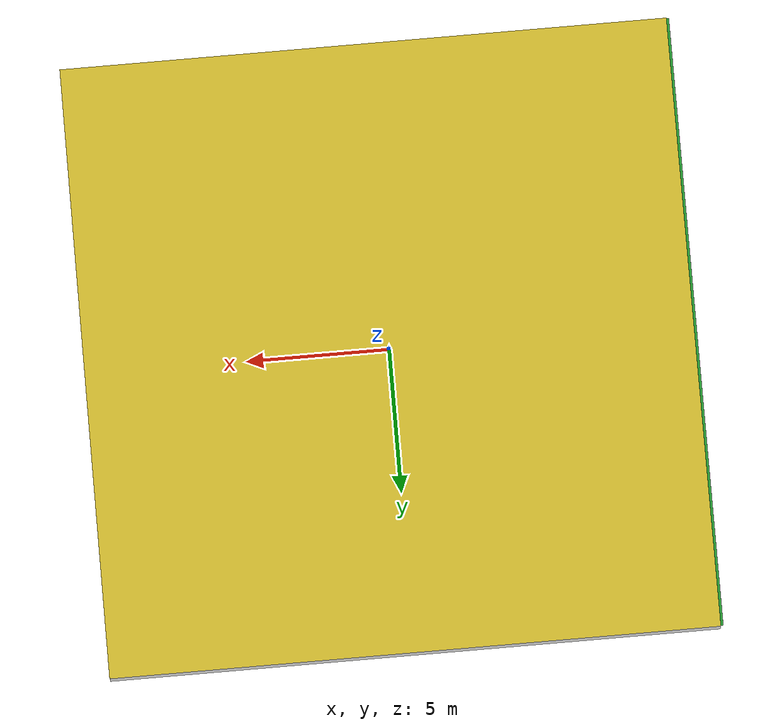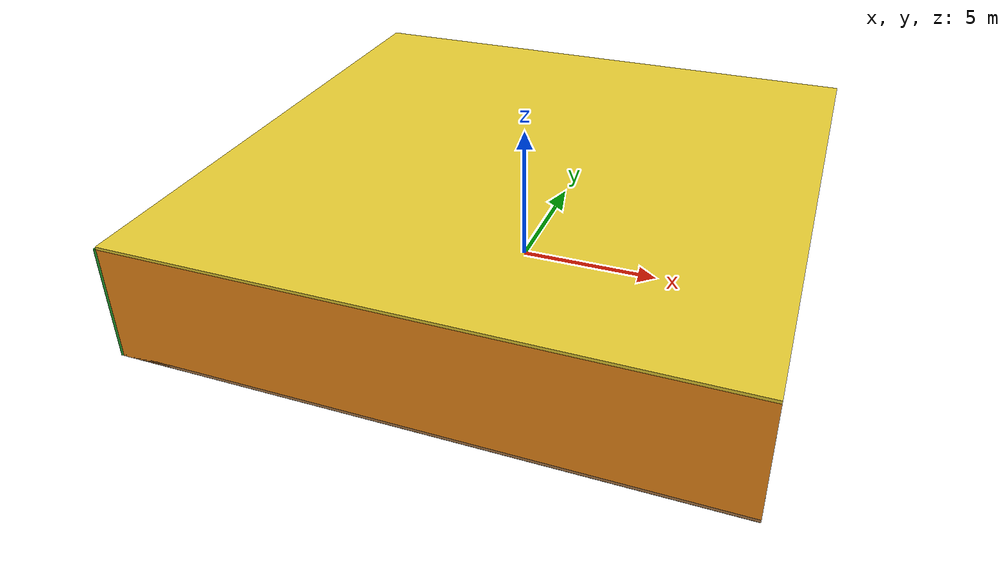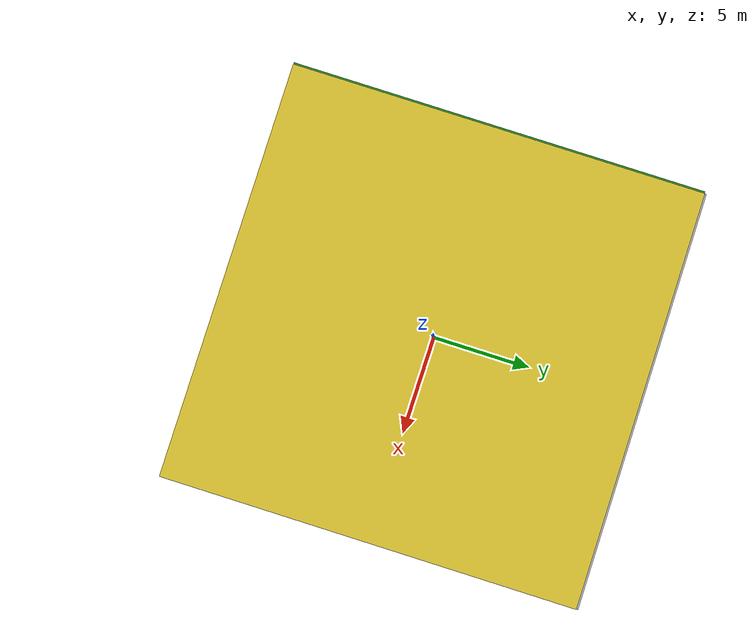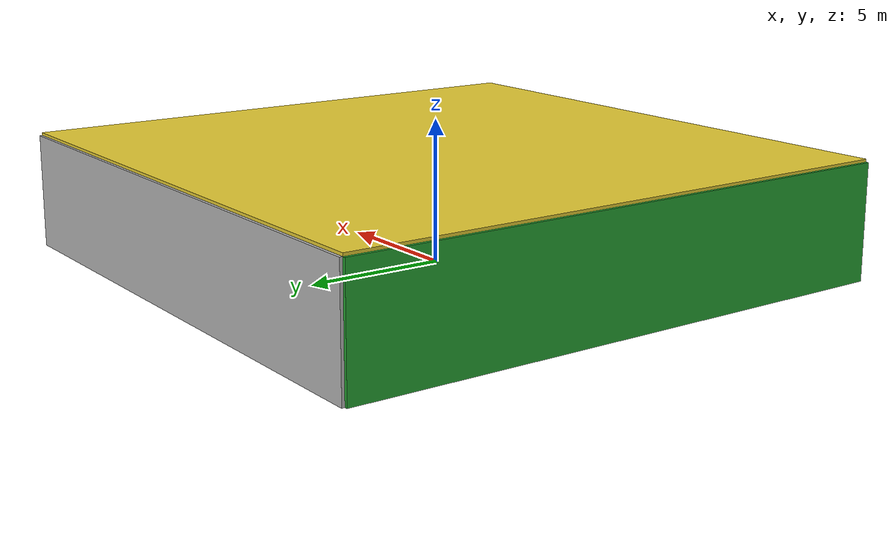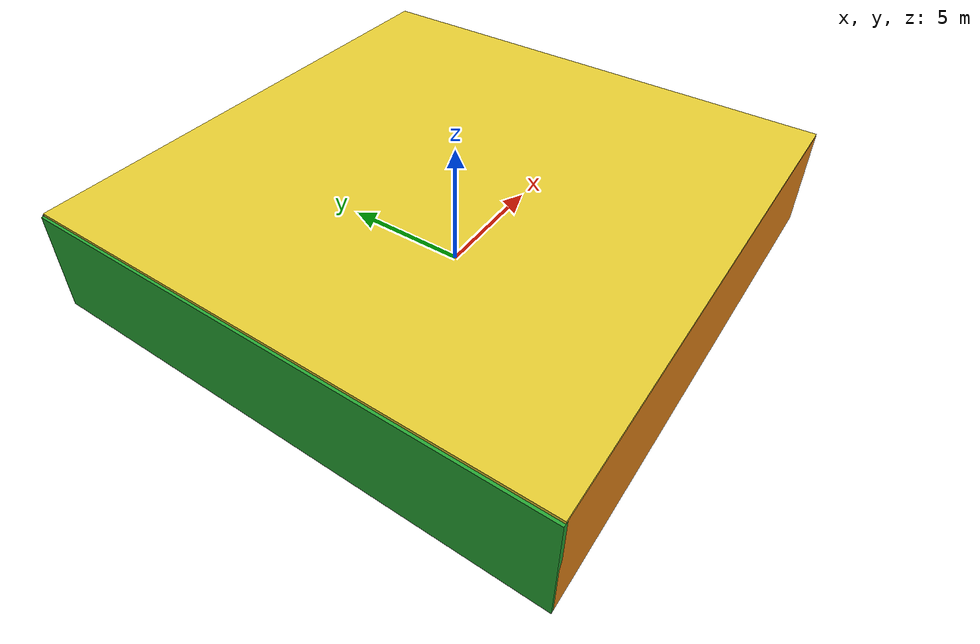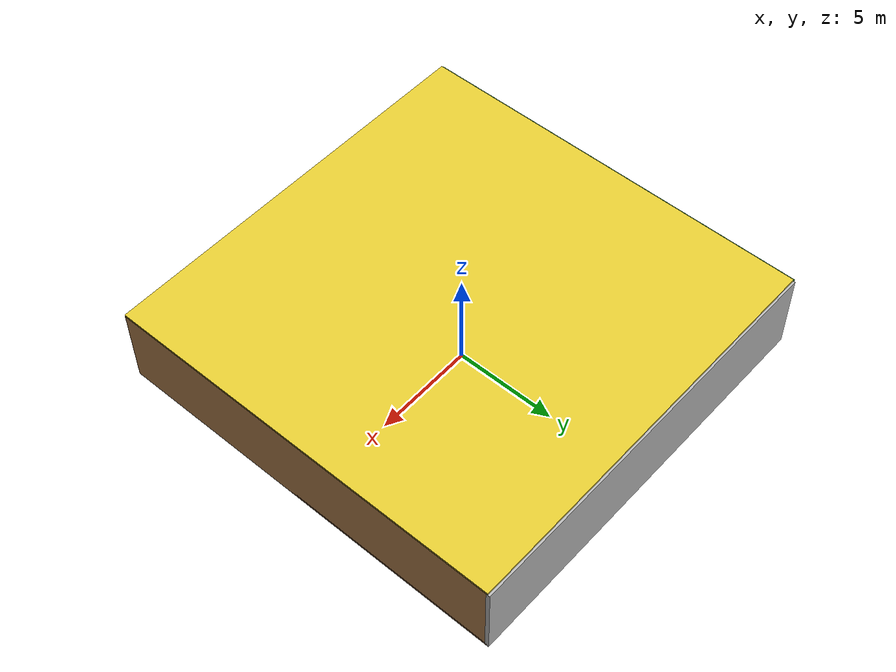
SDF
<sdf version="1.4">
 <world name="default">
  <physics type="ode">
   <max_step_size>0.001</max_step_size>
   <real_time_factor>1</real_time_factor>
   <real_time_update_rate>1000</real_time_update_rate>
   <gravity>0 0 -9.8</gravity>
  </physics>
  <scene><ambient>0.4 0.4 0.4 1</ambient><background>0.7 0.7 0.7 1</background><shadows>1</shadows></scene>
  <model name="Surrounding">
   <static>1</static>
   <link name="Ceiling">
    <collision name="Ceiling_Collision"><geometry><box><size>20 20 0.1</size></box></geometry></collision>
    <visual name="Ceiling_Visual">
     <geometry><box><size>20 20 0.1</size></box></geometry>
     <material>
      <script><uri>file://media/materials/scripts/gazebo.material</uri><name>Gazebo/ZincYellow</name></script>
     </material>
    </visual>
    <pose>0 0 4.05 0 0 0</pose>
   </link>
   <link name="Wall_South">
    <collision name="Wall_South_Collision">
     <geometry><box><size>20 0 4</size></box></geometry>
     <pose>0 0 2 0 -0 0</pose>
    </collision>
    <visual name="Wall_South_Visual">
     <pose>0 0 2 0 -0 0</pose>
     <geometry><box><size>20 0 4</size></box></geometry>
     <material>
      <script><uri>file://media/materials/scripts/gazebo.material</uri><name>Gazebo/Orange</name></script>
     </material>
    </visual>
    <velocity_decay><linear>0</linear><angular>0</angular></velocity_decay>
    <pose>0 -10 0 0 -0 0</pose>
   </link>
   <link name="Wall_East">
    <collision name="Wall_21_Collision">
     <geometry><box><size>20 0 4</size></box></geometry>
     <pose>0 0 2 0 -0 0</pose>
    </collision>
    <visual name="Wall_21_Visual">
     <pose>0 0 2 0 -0 0</pose>
     <geometry><box><size>20 0 4</size></box></geometry>
     <material>
      <script><uri>file://media/materials/scripts/gazebo.material</uri><name>Gazebo/WoodPallet</name></script>
     </material>
    </visual>
    <velocity_decay><linear>0</linear><angular>0</angular></velocity_decay>
    <pose>10 0 0 0 -0 1.5708</pose>
   </link>
   <link name="Wall_North">
    <collision name="Wall_22_Collision">
     <geometry><box><size>20 0.2 4</size></box></geometry>
     <pose>0 0 2 0 -0 0</pose>
    </collision>
    <visual name="Wall_22_Visual">
     <pose>0 0 2 0 -0 0</pose>
     <geometry><box><size>20 0.2 4</size></box></geometry>
     <material>
      <script><uri>file://media/materials/scripts/gazebo.material</uri><name>Gazebo/Pioneer2Body</name></script>
     </material>
    </visual>
    <velocity_decay><linear>0</linear><angular>0</angular></velocity_decay>
    <pose>0 10 0 0 -0 0</pose>
   </link>
   <link name="Wall_West">
    <collision name="Wall_23_Collision">
     <geometry><box><size>20 0.2 4</size></box></geometry>
     <pose>0 0 2 0 -0 0</pose>
    </collision>
    <visual name="Wall_23_Visual">
     <pose>0 0 2 0 -0 0</pose>
     <geometry><box><size>20 0.2 4</size></box></geometry>
     <material>
      <script><uri>file://media/materials/scripts/gazebo.material</uri><name>Gazebo/GreenGlow</name></script>
     </material>
    </visual>
    <velocity_decay><linear>0</linear><angular>0</angular></velocity_decay>
    <pose>-10 0 0 0 0 -1.5708</pose>
   </link>
   <link name="Ground_link">
    <collision name="collision">
     <pose>0 0 .05 0 -0 0</pose>
     <geometry><box><size>20 20 0.1</size></box></geometry>
    </collision>
    <visual name="visual">
     <pose>0 0 .05 0 -0 0</pose>
     <geometry><box><size>20 20 0.1</size></box></geometry>
     <material>
      <script><uri>file://media/materials/scripts/gazebo.material</uri><name>Gazebo/Wood</name></script>
     </material>
    </visual>
   </link>
   <static>1</static>
  </model>
  <spherical_coordinates>
   <surface_model>EARTH_WGS84</surface_model>
   <latitude_deg>0</latitude_deg>
   <longitude_deg>0</longitude_deg>
   <elevation>0</elevation>
   <heading_deg>0</heading_deg>
  </spherical_coordinates>
  <light name="lightball_0" type="diffuse">
   <diffuse>0.8 0.8 0.8 1</diffuse>
   <specular>0.2 0.2 0.2 1</specular>
   <attenuation>
    <range>100</range>
    <constant>0.7</constant>
    <linear>0.01</linear>
    <quadratic>0.001</quadratic>
   </attenuation>
   <direction>-0.5 0.1 -0.9</direction>
   <pose>-5.4853693759 -2.44600669655 1.25532733633 0 0 0</pose>
  </light>
  <light name="lightball_1" type="diffuse">
   <diffuse>0.8 0.8 0.8 1</diffuse>
   <specular>0.2 0.2 0.2 1</specular>
   <attenuation>
    <range>100</range>
    <constant>0.7</constant>
    <linear>0.01</linear>
    <quadratic>0.001</quadratic>
   </attenuation>
   <direction>-0.5 0.1 -0.9</direction>
   <pose>1.05872415017 1.04516365054 0.861253072811 0 0 0</pose>
  </light>
  <light name="lightball_2" type="diffuse">
   <diffuse>0.8 0.8 0.8 1</diffuse>
   <specular>0.2 0.2 0.2 1</specular>
   <attenuation>
    <range>100</range>
    <constant>0.7</constant>
    <linear>0.01</linear>
    <quadratic>0.001</quadratic>
   </attenuation>
   <direction>-0.5 0.1 -0.9</direction>
   <pose>-4.91390622614 -8.59862210457 1.86897297489 0 0 0</pose>
  </light>
  <light name="lightball_3" type="diffuse">
   <diffuse>0.8 0.8 0.8 1</diffuse>
   <specular>0.2 0.2 0.2 1</specular>
   <attenuation>
    <range>100</range>
    <constant>0.7</constant>
    <linear>0.01</linear>
    <quadratic>0.001</quadratic>
   </attenuation>
   <direction>-0.5 0.1 -0.9</direction>
   <pose>-6.4556587731 -2.02744845907 2.49440071284 0 0 0</pose>
  </light>
  <light name="lightball_4" type="diffuse">
   <diffuse>0.8 0.8 0.8 1</diffuse>
   <specular>0.2 0.2 0.2 1</specular>
   <attenuation>
    <range>100</range>
    <constant>0.7</constant>
    <linear>0.01</linear>
    <quadratic>0.001</quadratic>
   </attenuation>
   <direction>-0.5 0.1 -0.9</direction>
   <pose>5.36836452575 -9.94602381541 1.33924877794 0 0 0</pose>
  </light>
  <light name="lightball_5" type="diffuse">
   <diffuse>0.8 0.8 0.8 1</diffuse>
   <specular>0.2 0.2 0.2 1</specular>
   <attenuation>
    <range>100</range>
    <constant>0.7</constant>
    <linear>0.01</linear>
    <quadratic>0.001</quadratic>
   </attenuation>
   <direction>-0.5 0.1 -0.9</direction>
   <pose>-4.83211184765 -4.66083564564 1.92419542967 0 0 0</pose>
  </light>
  <light name="lightball_6" type="diffuse">
   <diffuse>0.8 0.8 0.8 1</diffuse>
   <specular>0.2 0.2 0.2 1</specular>
   <attenuation>
    <range>100</range>
    <constant>0.7</constant>
    <linear>0.01</linear>
    <quadratic>0.001</quadratic>
   </attenuation>
   <direction>-0.5 0.1 -0.9</direction>
   <pose>1.30678626761 8.85349128953 1.58536342935 0 0 0</pose>
  </light>
  <light name="lightball_7" type="diffuse">
   <diffuse>0.8 0.8 0.8 1</diffuse>
   <specular>0.2 0.2 0.2 1</specular>
   <attenuation>
    <range>100</range>
    <constant>0.7</constant>
    <linear>0.01</linear>
    <quadratic>0.001</quadratic>
   </attenuation>
   <direction>-0.5 0.1 -0.9</direction>
   <pose>9.50557186364 -6.75429132976 1.88360563842 0 0 0</pose>
  </light>
  <light name="lightball_8" type="diffuse">
   <diffuse>0.8 0.8 0.8 1</diffuse>
   <specular>0.2 0.2 0.2 1</specular>
   <attenuation>
    <range>100</range>
    <constant>0.7</constant>
    <linear>0.01</linear>
    <quadratic>0.001</quadratic>
   </attenuation>
   <direction>-0.5 0.1 -0.9</direction>
   <pose>3.08291568479 0.284509414233 3.44411354816 0 0 0</pose>
  </light>
  <light name="lightball_9" type="diffuse">
   <diffuse>0.8 0.8 0.8 1</diffuse>
   <specular>0.2 0.2 0.2 1</specular>
   <attenuation>
    <range>100</range>
    <constant>0.7</constant>
    <linear>0.01</linear>
    <quadratic>0.001</quadratic>
   </attenuation>
   <direction>-0.5 0.1 -0.9</direction>
   <pose>-5.6716341648 -0.0200716750839 3.68308649117 0 0 0</pose>
  </light>
  <light name="lightball_10" type="diffuse">
   <diffuse>0.8 0.8 0.8 1</diffuse>
   <specular>0.2 0.2 0.2 1</specular>
   <attenuation>
    <range>100</range>
    <constant>0.7</constant>
    <linear>0.01</linear>
    <quadratic>0.001</quadratic>
   </attenuation>
   <direction>-0.5 0.1 -0.9</direction>
   <pose>-7.86111337039 -7.15789631864 2.18699310596 0 0 0</pose>
  </light>
  <light name="lightball_11" type="diffuse">
   <diffuse>0.8 0.8 0.8 1</diffuse>
   <specular>0.2 0.2 0.2 1</specular>
   <attenuation>
    <range>100</range>
    <constant>0.7</constant>
    <linear>0.01</linear>
    <quadratic>0.001</quadratic>
   </attenuation>
   <direction>-0.5 0.1 -0.9</direction>
   <pose>-3.58353902002 -0.0467136719212 0.871032216051 0 0 0</pose>
  </light>
  <light name="lightball_12" type="diffuse">
   <diffuse>0.8 0.8 0.8 1</diffuse>
   <specular>0.2 0.2 0.2 1</specular>
   <attenuation>
    <range>100</range>
    <constant>0.7</constant>
    <linear>0.01</linear>
    <quadratic>0.001</quadratic>
   </attenuation>
   <direction>-0.5 0.1 -0.9</direction>
   <pose>1.90144418336 8.50164414242 0.550464564724 0 0 0</pose>
  </light>
  <light name="lightball_13" type="diffuse">
   <diffuse>0.8 0.8 0.8 1</diffuse>
   <specular>0.2 0.2 0.2 1</specular>
   <attenuation>
    <range>100</range>
    <constant>0.7</constant>
    <linear>0.01</linear>
    <quadratic>0.001</quadratic>
   </attenuation>
   <direction>-0.5 0.1 -0.9</direction>
   <pose>-3.51834587405 3.2871546594 3.66596448909 0 0 0</pose>
  </light>
  <include>
   <uri>model://textured_shapes</uri>
   <pose>-0.5933966897 0.342497892912 0 0 0 1.85273624869</pose>
  </include>
  <include><uri>model://table</uri><pose>-1.30229935938 6.55828084323 0 0 0 2.36744121264</pose></include>
  <include>
   <uri>model://construction_cone</uri>
   <pose>1.5891110428 -5.08242346128 0 0 0 0.695060364082</pose>
  </include>
 </world>
</sdf>

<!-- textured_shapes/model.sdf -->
<sdf version="1.6">
  <model name="textured_shapes">
    <pose>0 0 0.5 0 0 0</pose>
    <link name="box">
      <pose>0 -1.5 0 0 0 0</pose>
      <collision name="collision">
        <geometry>
          <box>
            <size>1 1 1</size>
          </box>
        </geometry>
      </collision>
      <visual name="visual">
        <geometry>
          <box>
            <size>1 1 1</size>
          </box>
        </geometry>
        <material>
          <script>
            <uri>model://../model_source/models/textured_shapes/materials/scripts</uri>
            <uri>model://../model_source/models/textured_shapes/materials/textures</uri>
            <name>TexturedShape/Squares</name>
          </script>
        </material>
      </visual>
    </link>
    <link name="sphere">
      <collision name="collision">
        <geometry>
          <sphere>
            <radius>0.5</radius>
          </sphere>
        </geometry>
      </collision>
      <visual name="visual">
        <geometry>
          <sphere>
            <radius>0.5</radius>
          </sphere>
        </geometry>
        <material>
          <script>
            <uri>model://../model_source/models/textured_shapes/materials/scripts</uri>
            <uri>model://../model_source/models/textured_shapes/materials/textures</uri>
            <name>TexturedShape/Squares</name>
          </script>
        </material>
      </visual>
    </link>
    <link name="cylinder">
      <pose>0 1.5 0 0 0 0</pose>
      <collision name="collision">
        <geometry>
          <cylinder>
            <radius>0.5</radius>
            <length>1</length>
          </cylinder>
        </geometry>
      </collision>
      <visual name="visual">
        <geometry>
          <cylinder>
            <radius>0.5</radius>
            <length>1</length>
          </cylinder>
        </geometry>
        <material>
          <script>
            <uri>model://../model_source/models/textured_shapes/materials/scripts</uri>
            <uri>model://../model_source/models/textured_shapes/materials/textures</uri>
            <name>TexturedShape/Squares</name>
          </script>
        </material>
      </visual>
    </link>
  </model>
</sdf>

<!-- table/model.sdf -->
<sdf version="1.5">
  <model name="table">
    <static>true</static>
    <link name="link">
      <collision name="surface">
        <pose>0 0 1.0 0 0 0</pose>
        <geometry>
          <box>
            <size>1.5 0.8 0.03</size>
          </box>
        </geometry>
        <surface>
          <friction>
            <ode>
              <mu>0.6</mu>
              <mu2>0.6</mu2>
            </ode>
          </friction>
        </surface>
      </collision>
      <visual name="visual1">
        <pose>0 0 1.0 0 0 0</pose>
        <geometry>
          <box>
            <size>1.5 0.8 0.03</size>
          </box>
        </geometry>
        <material>
          <script>
            <uri>model://media/materials/scripts/gazebo.material</uri>
            <name>Gazebo/Wood</name>
          </script>
        </material>
      </visual>
      <collision name="front_left_leg">
        <pose>0.68 0.38 0.5 0 0 0</pose>
        <geometry>
          <cylinder>
            <radius>0.02</radius>
            <length>1.0</length>
          </cylinder>
        </geometry>
      </collision>
      <visual name="front_left_leg">
        <pose>0.68 0.38 0.5 0 0 0</pose>
        <geometry>
          <cylinder>
            <radius>0.02</radius>
            <length>1.0</length>
          </cylinder>
        </geometry>
        <material>
          <script>
            <uri>model://media/materials/scripts/gazebo.material</uri>
            <name>Gazebo/Grey</name>
          </script>
        </material>
      </visual>
      <collision name="front_right_leg">
        <pose>0.68 -0.38 0.5 0 0 0</pose>
        <geometry>
          <cylinder>
            <radius>0.02</radius>
            <length>1.0</length>
          </cylinder>
        </geometry>
      </collision>
      <visual name="front_right_leg">
        <pose>0.68 -0.38 0.5 0 0 0</pose>
        <geometry>
          <cylinder>
            <radius>0.02</radius>
            <length>1.0</length>
          </cylinder>
        </geometry>
        <material>
          <script>
            <uri>model://media/materials/scripts/gazebo.material</uri>
            <name>Gazebo/Grey</name>
          </script>
        </material>
      </visual>
      <collision name="back_right_leg">
        <pose>-0.68 -0.38 0.5 0 0 0</pose>
        <geometry>
          <cylinder>
            <radius>0.02</radius>
            <length>1.0</length>
          </cylinder>
        </geometry>
      </collision>
      <visual name="back_right_leg">
        <pose>-0.68 -0.38 0.5 0 0 0</pose>
        <geometry>
          <cylinder>
            <radius>0.02</radius>
            <length>1.0</length>
          </cylinder>
        </geometry>
        <material>
          <script>
            <uri>model://media/materials/scripts/gazebo.material</uri>
            <name>Gazebo/Grey</name>
          </script>
        </material>
      </visual>
      <collision name="back_left_leg">
        <pose>-0.68 0.38 0.5 0 0 0</pose>
        <geometry>
          <cylinder>
            <radius>0.02</radius>
            <length>1.0</length>
          </cylinder>
        </geometry>
      </collision>
      <visual name="back_left_leg">
        <pose>-0.68 0.38 0.5 0 0 0</pose>
        <geometry>
          <cylinder>
            <radius>0.02</radius>
            <length>1.0</length>
          </cylinder>
        </geometry>
        <material>
          <script>
            <uri>model://media/materials/scripts/gazebo.material</uri>
            <name>Gazebo/Grey</name>
          </script>
        </material>
      </visual>
    </link>
  </model>
</sdf>

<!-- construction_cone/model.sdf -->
<sdf version="1.5">
  <model name="Construction Cone">
    <link name="link">
      <collision name="collision">
        <geometry>
          <mesh>
            <scale>10 10 10</scale>
            <uri>file://isr-testbed/construction_cone/meshes/construction_cone.dae</uri>
          </mesh>
        </geometry>
      </collision>
      <visual name="visual">
        <geometry>
          <mesh>
            <scale>10 10 10</scale>
            <uri>file://isr-testbed/construction_cone/meshes/construction_cone.dae</uri>
          </mesh>
        </geometry>
      </visual>
    </link>
  </model>
</sdf>
